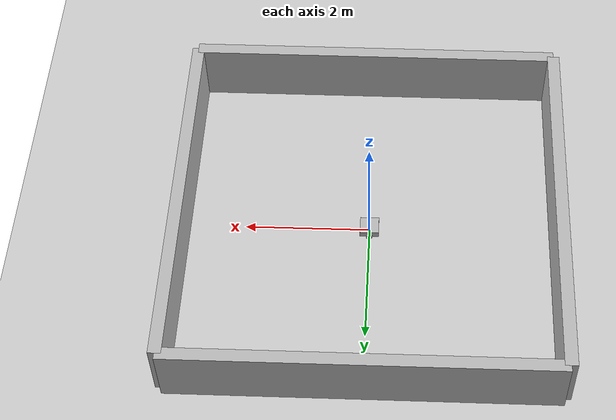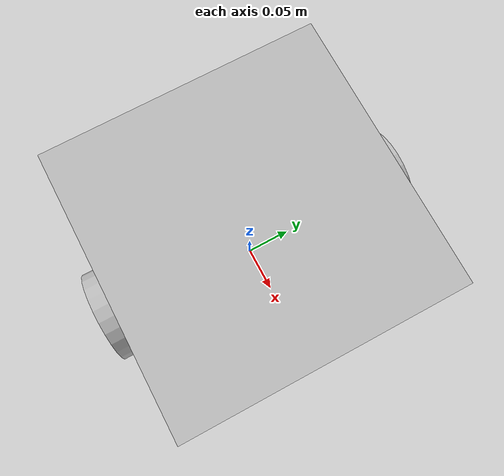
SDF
<?xml version="1.0" ?>
<sdf version="1.8">
  <world name="swarm_world">
    <plugin filename="gz-sim-physics-system" name="gz::sim::systems::Physics"/>
    <plugin filename="gz-sim-sensors-system" name="gz::sim::systems::Sensors">
      <render_engine>ogre2</render_engine>
    </plugin>
    <plugin filename="gz-sim-scene-broadcaster-system" name="gz::sim::systems::SceneBroadcaster"/>
    <plugin filename="gz-sim-user-commands-system" name="gz::sim::systems::UserCommands"/>

    <light type="directional" name="sun">
      <cast_shadows>true</cast_shadows>
      <pose>0 0 10 0 0 0</pose>
      <diffuse>1 1 1 1</diffuse>
    </light>

    <model name="ground_plane">
      <static>true</static>
      <link name="link">
        <collision name="collision">
          <geometry><plane><normal>0 0 1</normal></plane></geometry>
        </collision>
        <visual name="visual">
          <geometry><plane><normal>0 0 1</normal><size>100 100</size></plane></geometry>
        </visual>
      </link>
    </model>

    <model name="wall_north">
      <static>true</static>
      <pose>3 0 0.5 0 0 0</pose>
      <link name="link">
        <collision name="collision">
          <geometry><box><size>0.2 6 1</size></box></geometry>
        </collision>
        <visual name="visual">
          <geometry><box><size>0.2 6 1</size></box></geometry>
        </visual>
      </link>
    </model>

    <model name="wall_south">
      <static>true</static>
      <pose>-3 0 0.5 0 0 0</pose>
      <link name="link">
        <collision name="collision">
          <geometry><box><size>0.2 6 1</size></box></geometry>
        </collision>
        <visual name="visual">
          <geometry><box><size>0.2 6 1</size></box></geometry>
        </visual>
      </link>
    </model>

    <model name="wall_east">
      <static>true</static>
      <pose>0 3 0.5 0 0 0</pose>
      <link name="link">
        <collision name="collision">
          <geometry><box><size>6 0.2 1</size></box></geometry>
        </collision>
        <visual name="visual">
          <geometry><box><size>6 0.2 1</size></box></geometry>
        </visual>
      </link>
    </model>

    <model name="wall_west">
      <static>true</static>
      <pose>0 -3 0.5 0 0 0</pose>
      <link name="link">
        <collision name="collision">
          <geometry><box><size>6 0.2 1</size></box></geometry>
        </collision>
        <visual name="visual">
          <geometry><box><size>6 0.2 1</size></box></geometry>
        </visual>
      </link>
    </model>

    <model name="robot">
      <pose>0 0 0.1 0 0 0</pose>

      <plugin filename="gz-sim-diff-drive-system" name="gz::sim::systems::DiffDrive">
        <left_joint>left_wheel_joint</left_joint>
        <right_joint>right_wheel_joint</right_joint>
        <wheel_separation>0.3</wheel_separation>
        <wheel_radius>0.05</wheel_radius>
        <topic>/cmd_vel</topic>
        <odom_topic>/odom</odom_topic>
        <tf_topic>/tf</tf_topic>
        <frame_id>odom</frame_id>
        <child_frame_id>base_link</child_frame_id>
        <odom_publish_frequency>10</odom_publish_frequency>
      </plugin>

      <plugin filename="gz-sim-joint-state-publisher-system" name="gz::sim::systems::JointStatePublisher"/>

      <link name="base_link">
        <inertial>
          <mass>1.0</mass>
          <!-- box 0.3x0.3x0.1: Ixx=Iyy=m/12*(0.09+0.01), Izz=m/12*(0.09+0.09) -->
          <inertia><ixx>0.00833</ixx><ixy>0</ixy><ixz>0</ixz><iyy>0.00833</iyy><iyz>0</iyz><izz>0.015</izz></inertia>
        </inertial>
        <visual name="visual">
          <geometry><box><size>0.3 0.3 0.1</size></box></geometry>
        </visual>
        <collision name="collision">
          <geometry><box><size>0.3 0.3 0.1</size></box></geometry>
        </collision>
      </link>

      <link name="left_wheel">
        <pose>0 0.15 -0.05 1.5707 0 0</pose>
        <inertial>
          <mass>0.1</mass>
          <!-- cylinder r=0.05 h=0.05: Ixx=Izz=m/12*(3r²+h²), Iyy=m/2*r² -->
          <inertia><ixx>0.000083</ixx><ixy>0</ixy><ixz>0</ixz><iyy>0.000125</iyy><iyz>0</iyz><izz>0.000083</izz></inertia>
        </inertial>
        <visual name="visual">
          <geometry><cylinder><radius>0.05</radius><length>0.05</length></cylinder></geometry>
        </visual>
        <collision name="collision">
          <geometry><cylinder><radius>0.05</radius><length>0.05</length></cylinder></geometry>
        </collision>
      </link>

      <link name="right_wheel">
        <pose>0 -0.15 -0.05 1.5707 0 0</pose>
        <inertial>
          <mass>0.1</mass>
          <inertia><ixx>0.000083</ixx><ixy>0</ixy><ixz>0</ixz><iyy>0.000125</iyy><iyz>0</iyz><izz>0.000083</izz></inertia>
        </inertial>
        <visual name="visual">
          <geometry><cylinder><radius>0.05</radius><length>0.05</length></cylinder></geometry>
        </visual>
        <collision name="collision">
          <geometry><cylinder><radius>0.05</radius><length>0.05</length></cylinder></geometry>
        </collision>
      </link>

      <link name="caster_front">
        <pose>0.1 0 -0.08 0 0 0</pose>
        <inertial>
          <mass>0.05</mass>
          <inertia><ixx>0.000004</ixx><ixy>0</ixy><ixz>0</ixz><iyy>0.000004</iyy><iyz>0</iyz><izz>0.000004</izz></inertia>
        </inertial>
        <visual name="visual">
          <geometry><sphere><radius>0.02</radius></sphere></geometry>
        </visual>
        <collision name="collision">
          <geometry><sphere><radius>0.02</radius></sphere></geometry>
          <surface><friction><ode><mu>0</mu><mu2>0</mu2></ode></friction></surface>
        </collision>
      </link>

      <link name="caster_rear">
        <pose>-0.1 0 -0.08 0 0 0</pose>
        <inertial>
          <mass>0.05</mass>
          <inertia><ixx>0.000004</ixx><ixy>0</ixy><ixz>0</ixz><iyy>0.000004</iyy><iyz>0</iyz><izz>0.000004</izz></inertia>
        </inertial>
        <visual name="visual">
          <geometry><sphere><radius>0.02</radius></sphere></geometry>
        </visual>
        <collision name="collision">
          <geometry><sphere><radius>0.02</radius></sphere></geometry>
          <surface><friction><ode><mu>0</mu><mu2>0</mu2></ode></friction></surface>
        </collision>
      </link>

      <joint name="caster_front_joint" type="ball">
        <parent>base_link</parent>
        <child>caster_front</child>
      </joint>

      <joint name="caster_rear_joint" type="ball">
        <parent>base_link</parent>
        <child>caster_rear</child>
      </joint>

      <joint name="left_wheel_joint" type="revolute">
        <parent>base_link</parent>
        <child>left_wheel</child>
        <axis>
          <xyz expressed_in="__model__">0 1 0</xyz>
        </axis>
      </joint>

      <joint name="right_wheel_joint" type="revolute">
        <parent>base_link</parent>
        <child>right_wheel</child>
        <axis>
          <xyz expressed_in="__model__">0 1 0</xyz>
        </axis>
      </joint>

      <link name="lidar_link">
        <pose>0 0 0.1 0 0 0</pose>
        <inertial>
          <mass>0.05</mass>
          <inertia><ixx>0.000021</ixx><ixy>0</ixy><ixz>0</ixz><iyy>0.000021</iyy><iyz>0</iyz><izz>0.000021</izz></inertia>
        </inertial>
        <sensor name="lidar" type="gpu_lidar">
          <topic>/scan</topic>
          <update_rate>10</update_rate>
          <lidar>
            <scan>
              <horizontal>
                <samples>360</samples>
                <resolution>1</resolution>
                <min_angle>-3.14159</min_angle>
                <max_angle>3.14159</max_angle>
              </horizontal>
            </scan>
            <range>
              <min>0.1</min>
              <max>10.0</max>
            </range>
          </lidar>
          <always_on>1</always_on>
          <visualize>true</visualize>
        </sensor>
      </link>

      <joint name="lidar_joint" type="fixed">
        <parent>base_link</parent>
        <child>lidar_link</child>
      </joint>
    </model>
  </world>
</sdf>
